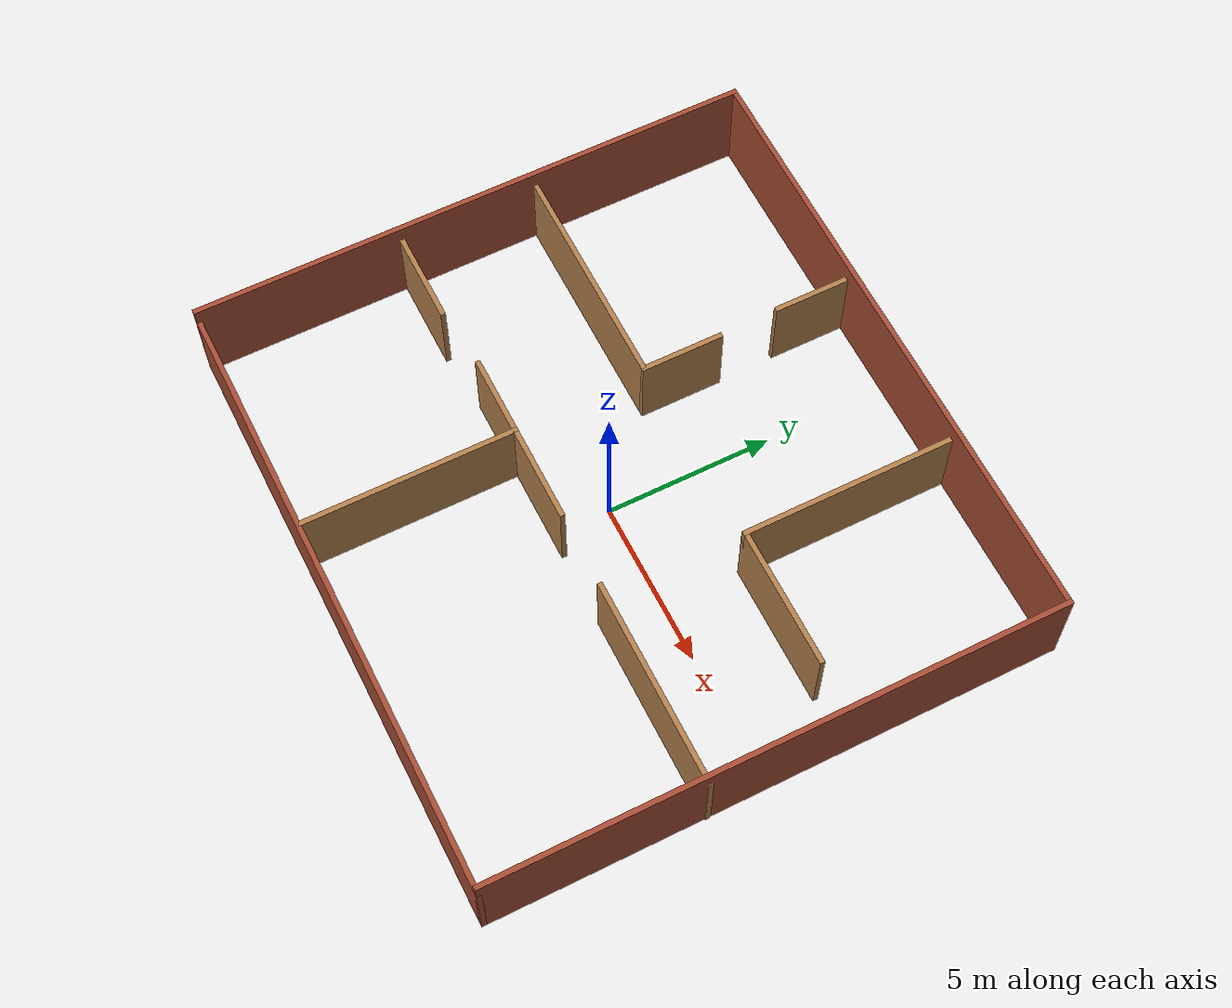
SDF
<?xml version='1.0'?>
<sdf version='1.7'>
  <model name='world'>
    <pose>-0.14492 0.35496 0 0 -0 0</pose>
    <link name='Wall_46'>
      <collision name='Wall_46_Collision'>
        <geometry>
          <box>
            <size>17 0.15 3</size>
          </box>
        </geometry>
        <pose>0 0 1.5 0 -0 0</pose>
      </collision>
      <visual name='Wall_46_Visual'>
        <pose>0 0 1.5 0 -0 0</pose>
        <geometry>
          <box>
            <size>17 0.15 3</size>
          </box>
        </geometry>
        <material>
          <script>
            <uri>file://media/materials/scripts/gazebo.material</uri>
            <name>Gazebo/Bricks</name>
          </script>
          <ambient>1 1 1 1</ambient>
        </material>
        <meta>
          <layer>0</layer>
        </meta>
      </visual>
      <pose>-9.15908 -0.03696 0 0 -0 1.5708</pose>
    </link>
    <link name='Wall_48'>
      <collision name='Wall_48_Collision'>
        <geometry>
          <box>
            <size>18.5 0.15 3</size>
          </box>
        </geometry>
        <pose>0 0 1.5 0 -0 0</pose>
      </collision>
      <visual name='Wall_48_Visual'>
        <pose>0 0 1.5 0 -0 0</pose>
        <geometry>
          <box>
            <size>18.5 0.15 3</size>
          </box>
        </geometry>
        <material>
          <script>
            <uri>file://media/materials/scripts/gazebo.material</uri>
            <name>Gazebo/Bricks</name>
          </script>
          <ambient>1 1 1 1</ambient>
        </material>
        <meta>
          <layer>0</layer>
        </meta>
      </visual>
      <pose>0.01592 8.38804 0 0 -0 0</pose>
    </link>
    <link name='Wall_49'>
      <collision name='Wall_49_Collision'>
        <geometry>
          <box>
            <size>17 0.15 3</size>
          </box>
        </geometry>
        <pose>0 0 1.5 0 -0 0</pose>
      </collision>
      <visual name='Wall_49_Visual'>
        <pose>0 0 1.5 0 -0 0</pose>
        <geometry>
          <box>
            <size>17 0.15 3</size>
          </box>
        </geometry>
        <material>
          <script>
            <uri>file://media/materials/scripts/gazebo.material</uri>
            <name>Gazebo/Bricks</name>
          </script>
          <ambient>1 1 1 1</ambient>
        </material>
        <meta>
          <layer>0</layer>
        </meta>
      </visual>
      <pose>9.19092 -0.03696 0 0 -0 -1.5708</pose>
    </link>
    <link name='Wall_55'>
      <collision name='Wall_55_Collision'>
        <geometry>
          <box>
            <size>7 0.15 2.5</size>
          </box>
        </geometry>
        <pose>0 0 1.25 0 -0 0</pose>
      </collision>
      <visual name='Wall_55_Visual'>
        <pose>0 0 1.25 0 -0 0</pose>
        <geometry>
          <box>
            <size>7 0.15 2.5</size>
          </box>
        </geometry>
        <material>
          <script>
            <uri>file://media/materials/scripts/gazebo.material</uri>
            <name>Gazebo/Wood</name>
          </script>
          <ambient>1 1 1 1</ambient>
        </material>
        <meta>
          <layer>0</layer>
        </meta>
      </visual>
      <pose>-5.65662 1.90386 0 0 -0 0</pose>
    </link>
    <link name='Wall_56'>
      <collision name='Wall_56_Collision'>
        <geometry>
          <box>
            <size>2.5 0.15 2.5</size>
          </box>
        </geometry>
        <pose>0 0 1.25 0 -0 0</pose>
      </collision>
      <visual name='Wall_56_Visual'>
        <pose>0 0 1.25 0 -0 0</pose>
        <geometry>
          <box>
            <size>2.5 0.15 2.5</size>
          </box>
        </geometry>
        <material>
          <script>
            <uri>file://media/materials/scripts/gazebo.material</uri>
            <name>Gazebo/Wood</name>
          </script>
          <ambient>1 1 1 1</ambient>
        </material>
        <meta>
          <layer>0</layer>
        </meta>
      </visual>
      <pose>-2.23162 3.07886 0 0 -0 1.5708</pose>
    </link>
    <link name='Wall_58'>
      <collision name='Wall_58_Collision'>
        <geometry>
          <box>
            <size>3 0.15 2.5</size>
          </box>
        </geometry>
        <pose>0 0 1.25 0 -0 0</pose>
      </collision>
      <visual name='Wall_58_Visual'>
        <pose>0 0 1.25 0 -0 0</pose>
        <geometry>
          <box>
            <size>3 0.15 2.5</size>
          </box>
        </geometry>
        <material>
          <script>
            <uri>file://media/materials/scripts/gazebo.material</uri>
            <name>Gazebo/Wood</name>
          </script>
          <ambient>1 1 1 1</ambient>
        </material>
        <meta>
          <layer>0</layer>
        </meta>
      </visual>
      <pose>-7.79689 -2.30425 0 0 -0 0</pose>
    </link>
    <link name='Wall_62'>
      <collision name='Wall_62_Collision'>
        <geometry>
          <box>
            <size>6.5 0.15 2.5</size>
          </box>
        </geometry>
        <pose>0 0 1.25 0 -0 0</pose>
      </collision>
      <visual name='Wall_62_Visual'>
        <pose>0 0 1.25 0 -0 0</pose>
        <geometry>
          <box>
            <size>6.5 0.15 2.5</size>
          </box>
        </geometry>
        <material>
          <script>
            <uri>file://media/materials/scripts/gazebo.material</uri>
            <name>Gazebo/Wood</name>
          </script>
          <ambient>1 1 1 1</ambient>
        </material>
        <meta>
          <layer>0</layer>
        </meta>
      </visual>
      <pose>-2.06811 -5.26884 0 0 -0 -1.5708</pose>
    </link>
    <link name='Wall_66'>
      <collision name='Wall_66_Collision'>
        <geometry>
          <box>
            <size>18.5 0.15 2.5</size>
          </box>
        </geometry>
        <pose>0 0 1.25 0 -0 0</pose>
      </collision>
      <visual name='Wall_66_Visual'>
        <pose>0 0 1.25 0 -0 0</pose>
        <geometry>
          <box>
            <size>18.5 0.15 2.5</size>
          </box>
        </geometry>
        <material>
          <script>
            <uri>file://media/materials/scripts/gazebo.material</uri>
            <name>Gazebo/Bricks</name>
          </script>
          <ambient>1 1 1 1</ambient>
        </material>
        <meta>
          <layer>0</layer>
        </meta>
      </visual>
      <pose>0.01592 -8.46196 0 0 -0 0</pose>
    </link>
    <link name='Wall_68'>
      <collision name='Wall_68_Collision'>
        <geometry>
          <box>
            <size>3 0.15 2.5</size>
          </box>
        </geometry>
        <pose>0 0 1.25 0 -0 0</pose>
      </collision>
      <visual name='Wall_68_Visual'>
        <pose>0 0 1.25 0 -0 0</pose>
        <geometry>
          <box>
            <size>3 0.15 2.5</size>
          </box>
        </geometry>
        <material>
          <script>
            <uri>file://media/materials/scripts/gazebo.material</uri>
            <name>Gazebo/Wood</name>
          </script>
          <ambient>1 1 1 1</ambient>
        </material>
        <meta>
          <layer>0</layer>
        </meta>
      </visual>
      <pose>-0.643109 -2.09384 0 0 -0 0</pose>
    </link>
    <link name='Wall_70'>
      <collision name='Wall_70_Collision'>
        <geometry>
          <box>
            <size>2.5 0.15 2.5</size>
          </box>
        </geometry>
        <pose>0 0 1.25 0 -0 0</pose>
      </collision>
      <visual name='Wall_70_Visual'>
        <pose>0 0 1.25 0 -0 0</pose>
        <geometry>
          <box>
            <size>2.5 0.15 2.5</size>
          </box>
        </geometry>
        <material>
          <script>
            <uri>file://media/materials/scripts/gazebo.material</uri>
            <name>Gazebo/Wood</name>
          </script>
          <ambient>1 1 1 1</ambient>
        </material>
        <meta>
          <layer>0</layer>
        </meta>
      </visual>
      <pose>-3.24311 -2.09384 0 0 -0 3.14159</pose>
    </link>
    <link name='Wall_72'>
      <collision name='Wall_72_Collision'>
        <geometry>
          <box>
            <size>6.25 0.15 2.5</size>
          </box>
        </geometry>
        <pose>0 0 1.25 0 -0 0</pose>
      </collision>
      <visual name='Wall_72_Visual'>
        <pose>0 0 1.25 0 -0 0</pose>
        <geometry>
          <box>
            <size>6.25 0.15 2.5</size>
          </box>
        </geometry>
        <material>
          <script>
            <uri>file://media/materials/scripts/gazebo.material</uri>
            <name>Gazebo/Wood</name>
          </script>
          <ambient>1 1 1 1</ambient>
        </material>
        <meta>
          <layer>0</layer>
        </meta>
      </visual>
      <pose>6.17188 -2.09384 0 0 -0 0</pose>
    </link>
    <link name='Wall_76'>
      <collision name='Wall_76_Collision'>
        <geometry>
          <box>
            <size>6.5 0.15 2.5</size>
          </box>
        </geometry>
        <pose>0 0 1.25 0 -0 0</pose>
      </collision>
      <visual name='Wall_76_Visual'>
        <pose>0 0 1.25 0 -0 0</pose>
        <geometry>
          <box>
            <size>6.5 0.15 2.5</size>
          </box>
        </geometry>
        <material>
          <script>
            <uri>file://media/materials/scripts/gazebo.material</uri>
            <name>Gazebo/Wood</name>
          </script>
          <ambient>1 1 1 1</ambient>
        </material>
        <meta>
          <layer>0</layer>
        </meta>
      </visual>
      <pose>3.47256 5.18128 0 0 -0 -1.5708</pose>
    </link>
    <link name='Wall_77'>
      <collision name='Wall_77_Collision'>
        <geometry>
          <box>
            <size>4.25 0.15 2.5</size>
          </box>
        </geometry>
        <pose>0 0 1.25 0 -0 0</pose>
      </collision>
      <visual name='Wall_77_Visual'>
        <pose>0 0 1.25 0 -0 0</pose>
        <geometry>
          <box>
            <size>4.25 0.15 2.5</size>
          </box>
        </geometry>
        <material>
          <script>
            <uri>file://media/materials/scripts/gazebo.material</uri>
            <name>Gazebo/Wood</name>
          </script>
          <ambient>1 1 1 1</ambient>
        </material>
        <meta>
          <layer>0</layer>
        </meta>
      </visual>
      <pose>5.52256 2.00628 0 0 -0 0</pose>
    </link>
    <link name='Wall_79'>
      <collision name='Wall_79_Collision'>
        <geometry>
          <box>
            <size>2.5 0.15 2.5</size>
          </box>
        </geometry>
        <pose>0 0 1.25 0 -0 0</pose>
      </collision>
      <visual name='Wall_79_Visual'>
        <pose>0 0 1.25 0 -0 0</pose>
        <geometry>
          <box>
            <size>2.5 0.15 2.5</size>
          </box>
        </geometry>
        <material>
          <script>
            <uri>file://media/materials/scripts/gazebo.material</uri>
            <name>Gazebo/Wood</name>
          </script>
          <ambient>1 1 1 1</ambient>
        </material>
        <meta>
          <layer>0</layer>
        </meta>
      </visual>
      <pose>-2.27851 7.28696 0 0 -0 1.5708</pose>
    </link>
    <static>1</static>
  </model>
</sdf>
